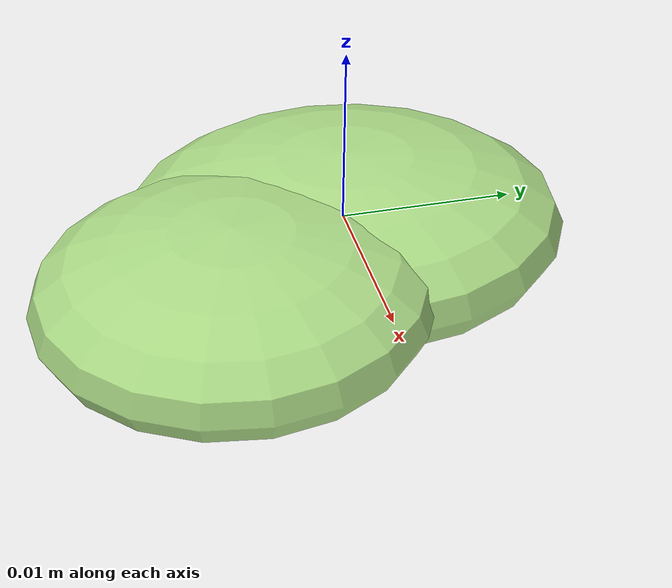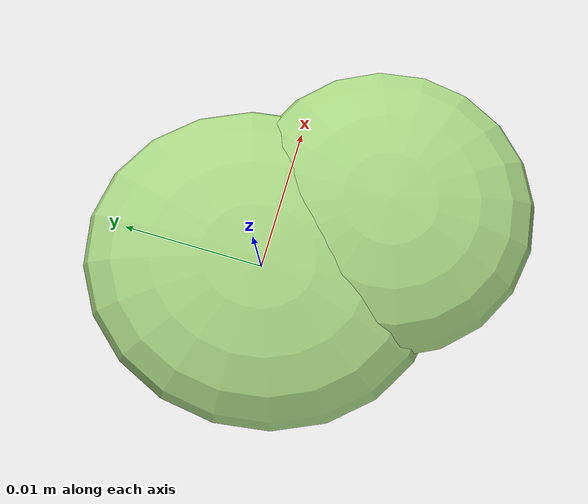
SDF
<?xml version="1.0" ?>
<!-- |    This document was autogenerated by xmacro from data/veggie_template/veggie_base.sdf.xacro  | -->
<!-- |    EDITING THIS FILE BY HAND IS NOT RECOMMENDED                                               | -->
<sdf version="1.8">
	<!-- Parameters -->
	<!-- Base -->
	<!-- Joint 0 -->
	<!-- Link 1 -->
	<!-- Joint 1 -->
	<!-- Link 2 -->
	<!-- Primitives -->
	<!-- All dimensions are half -->
	<!-- Object -->
	<model name="veggie">
		<!-- link0 -->
		<link name="link0">
			<inertial>
				<mass>0.0024380831824225672</mass>
				<inertia>
					<ixx>8.578466380831662e-08</ixx>
					<ixy>0</ixy>
					<ixz>0</ixz>
					<iyy>6.97566517554393e-08</iyy>
					<iyz>0</iyz>
					<izz>1.3907721154352023e-07</izz>
				</inertia>
			</inertial>
			<visual name="link0_visual">
				<pose>0 0 0 0 0 0</pose>
				<geometry>
					<ellipsoid>
						<radii>0.011232725380148238 0.012611273868716907 0.004108798046759527</radii>
					</ellipsoid>
				</geometry>
				<material>
					<ambient>0.659 0.839 0.514 1</ambient>
					<diffuse>0.659 0.839 0.514 1</diffuse>
					<specular>0 0 0 0</specular>
					<emissive>0 0 0 1</emissive>
				</material>
			</visual>
			<collision name="link0_collision">
				<pose>0 0 0 0 0 0 </pose>
				<geometry>
					<ellipsoid>
						<radii>0.011232725380148238 0.012611273868716907 0.004108798046759527</radii>
					</ellipsoid>
				</geometry>
			</collision>
		</link>
		<!-- link1 -->
		<joint name="joint0" type="fixed">
			<pose relative_to="link0">0.006175963473817318 -0.007353203235842136 0.0005707517855062005 0.0 0.0 0.0</pose>
			<parent>link0</parent>
			<child>link1</child>
		</joint>
		<link name="link1">
			<pose relative_to="joint0">0 0 0 0 0 0</pose>
			<inertial>
				<mass>0.001680107795040307</mass>
				<inertia>
					<ixx>4.1228250331671425e-08</ixx>
					<ixy>0</ixy>
					<ixz>0</ixz>
					<iyy>4.001232134202948e-08</iyy>
					<iyz>0</iyz>
					<izz>7.175371300502959e-08</izz>
				</inertia>
			</inertial>
			<visual name="link1_visual">
				<pose>0 0 0 0 0 0</pose>
				<geometry>
					<ellipsoid>
						<radii>0.010245008826858533 0.010420115640338429 0.003757185575119462</radii>
					</ellipsoid>
				</geometry>
				<material>
					<ambient>0.659 0.839 0.514 1</ambient>
					<diffuse>0.659 0.839 0.514 1</diffuse>
					<specular>0 0 0 0</specular>
					<emissive>0 0 0 1</emissive>
				</material>
			</visual>
			<collision name="link1_collision">
				<pose>0 0 0 0 0 0 </pose>
				<geometry>
					<ellipsoid>
						<radii>0.010245008826858533 0.010420115640338429 0.003757185575119462</radii>
					</ellipsoid>
				</geometry>
			</collision>
		</link>
		<!-- link2 -->
	</model>
</sdf>
